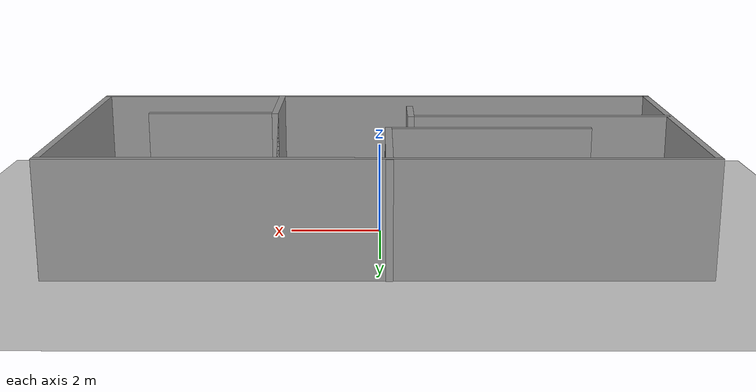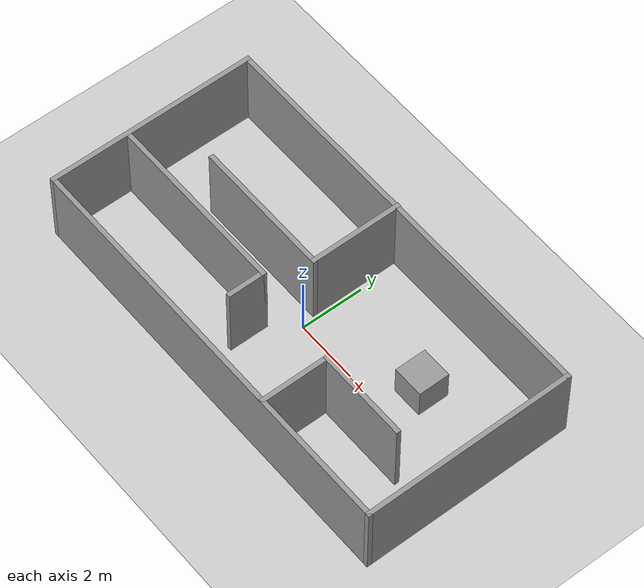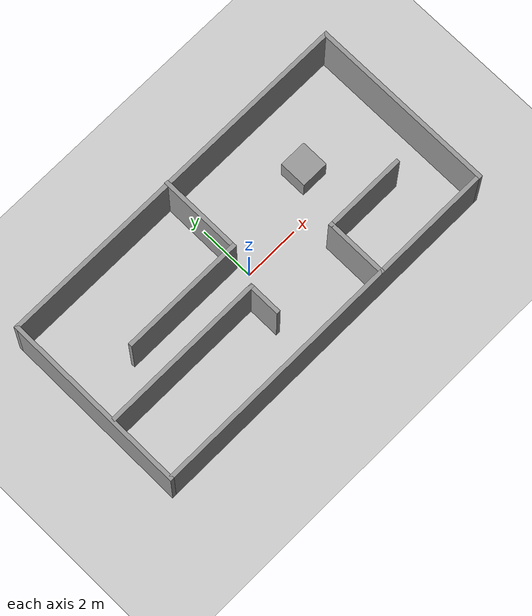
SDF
<sdf version="1.7">
 <world name="default">
  <light name="sun" type="directional">
   <pose>0 0 10 0 -0 0</pose>
   <diffuse>0.8 0.8 0.8 1</diffuse>
   <specular>0.2 0.2 0.2 1</specular>
   <attenuation>
    <range>1000</range>
    <constant>0.9</constant>
    <linear>0.01</linear>
    <quadratic>0.001</quadratic>
   </attenuation>
   <direction>-0.5 0.1 -0.9</direction>
   <spot><inner_angle>0</inner_angle><outer_angle>0</outer_angle><falloff>0</falloff></spot>
  </light>
  <model name="ground_plane">
   <static>1</static>
   <link name="link">
    <collision name="collision">
     <geometry><plane><normal>0 0 1</normal><size>100 100</size></plane></geometry>
     <surface><friction><ode><mu>100</mu><mu2>50</mu2></ode></friction></surface>
    </collision>
    <visual name="visual">
     <cast_shadows>0</cast_shadows>
     <geometry><plane><normal>0 0 1</normal><size>100 100</size></plane></geometry>
     <material>
      <script><uri>file://media/materials/scripts/gazebo.material</uri><name>Gazebo/Grey</name></script>
     </material>
    </visual>
   </link>
  </model>
  <gravity>0 0 -9.8</gravity>
  <magnetic_field>6e-06 2.3e-05 -4.2e-05</magnetic_field>
  <atmosphere type="adiabatic"/>
  <physics type="ode">
   <max_step_size>0.001</max_step_size>
   <real_time_factor>1</real_time_factor>
   <real_time_update_rate>1000</real_time_update_rate>
  </physics>
  <scene><ambient>0.4 0.4 0.4 1</ambient><background>0.7 0.7 0.7 1</background><shadows>1</shadows></scene>
  <audio><device>default</device></audio>
  <spherical_coordinates>
   <surface_model>EARTH_WGS84</surface_model>
   <latitude_deg>0</latitude_deg>
   <longitude_deg>0</longitude_deg>
   <elevation>0</elevation>
   <heading_deg>0</heading_deg>
  </spherical_coordinates>
  <model name="room">
   <pose>0.058165 0.039322 0 0 -0 0</pose>
   <link name="Wall_1">
    <collision name="Wall_1_Collision">
     <geometry><box><size>13.5 0.15 2.5</size></box></geometry>
     <pose>0 0 1.25 0 -0 0</pose>
    </collision>
    <visual name="Wall_1_Visual">
     <pose>0 0 1.25 0 -0 0</pose>
     <geometry><box><size>13.5 0.15 2.5</size></box></geometry>
     <material>
      <script><uri>file://media/materials/scripts/gazebo.material</uri><name>Gazebo/Grey</name></script>
      <ambient>1 1 1 1</ambient>
     </material>
     <meta><layer>0</layer></meta>
    </visual>
    <pose>-0 3.28812 0 0 -0 0</pose>
   </link>
   <link name="Wall_13">
    <collision name="Wall_13_Collision">
     <geometry><box><size>6 0.15 2.5</size></box></geometry>
     <pose>0 0 1.25 0 -0 0</pose>
    </collision>
    <visual name="Wall_13_Visual">
     <pose>0 0 1.25 0 -0 0</pose>
     <geometry><box><size>6 0.15 2.5</size></box></geometry>
     <material>
      <script><uri>file://media/materials/scripts/gazebo.material</uri><name>Gazebo/Grey</name></script>
      <ambient>1 1 1 1</ambient>
     </material>
     <meta><layer>0</layer></meta>
    </visual>
    <pose>-3.69355 -0.828744 0 0 -0 0</pose>
   </link>
   <link name="Wall_14">
    <collision name="Wall_14_Collision">
     <geometry><box><size>1.25 0.15 2.5</size></box></geometry>
     <pose>0 0 1.25 0 -0 0</pose>
    </collision>
    <visual name="Wall_14_Visual">
     <pose>0 0 1.25 0 -0 0</pose>
     <geometry><box><size>1.25 0.15 2.5</size></box></geometry>
     <material>
      <script><uri>file://media/materials/scripts/gazebo.material</uri><name>Gazebo/Grey</name></script>
      <ambient>1 1 1 1</ambient>
     </material>
     <meta><layer>0</layer></meta>
    </visual>
    <pose>-0.76855 -1.37874 0 0 -0 -1.5708</pose>
   </link>
   <link name="Wall_2">
    <collision name="Wall_2_Collision">
     <geometry><box><size>6.75 0.15 2.5</size></box></geometry>
     <pose>0 0 1.25 0 -0 0</pose>
    </collision>
    <visual name="Wall_2_Visual">
     <pose>0 0 1.25 0 -0 0</pose>
     <geometry><box><size>6.75 0.15 2.5</size></box></geometry>
     <material>
      <script><uri>file://media/materials/scripts/gazebo.material</uri><name>Gazebo/Grey</name></script>
      <ambient>1 1 1 1</ambient>
     </material>
     <meta><layer>0</layer></meta>
    </visual>
    <pose>6.675 -0.011884 0 0 -0 -1.5708</pose>
   </link>
   <link name="Wall_20">
    <collision name="Wall_20_Collision">
     <geometry><box><size>2.25 0.15 2.5</size></box></geometry>
     <pose>0 0 1.25 0 -0 0</pose>
    </collision>
    <visual name="Wall_20_Visual">
     <pose>0 0 1.25 0 -0 0</pose>
     <geometry><box><size>2.25 0.15 2.5</size></box></geometry>
     <material>
      <script><uri>file://media/materials/scripts/gazebo.material</uri><name>Gazebo/Grey</name></script>
      <ambient>1 1 1 1</ambient>
     </material>
     <meta><layer>0</layer></meta>
    </visual>
    <pose>2.36056 -2.24451 0 0 -0 1.5708</pose>
   </link>
   <link name="Wall_21">
    <collision name="Wall_21_Collision">
     <geometry><box><size>3 0.15 2.5</size></box></geometry>
     <pose>0 0 1.25 0 -0 0</pose>
    </collision>
    <visual name="Wall_21_Visual">
     <pose>0 0 1.25 0 -0 0</pose>
     <geometry><box><size>3 0.15 2.5</size></box></geometry>
     <material>
      <script><uri>file://media/materials/scripts/gazebo.material</uri><name>Gazebo/Grey</name></script>
      <ambient>1 1 1 1</ambient>
     </material>
     <meta><layer>0</layer></meta>
    </visual>
    <pose>3.78557 -1.19451 0 0 -0 0</pose>
   </link>
   <link name="Wall_5">
    <collision name="Wall_5_Collision">
     <geometry><box><size>6.75 0.15 2.5</size></box></geometry>
     <pose>0 0 1.25 0 -0 0</pose>
    </collision>
    <visual name="Wall_5_Visual">
     <pose>0 0 1.25 0 -0 0</pose>
     <geometry><box><size>6.75 0.15 2.5</size></box></geometry>
     <material>
      <script><uri>file://media/materials/scripts/gazebo.material</uri><name>Gazebo/Grey</name></script>
      <ambient>1 1 1 1</ambient>
     </material>
     <meta><layer>0</layer></meta>
    </visual>
    <pose>-6.675 -0.011884 0 0 -0 -1.5708</pose>
   </link>
   <link name="Wall_6">
    <collision name="Wall_6_Collision">
     <geometry><box><size>13.5 0.15 2.5</size></box></geometry>
     <pose>0 0 1.25 0 -0 0</pose>
    </collision>
    <visual name="Wall_6_Visual">
     <pose>0 0 1.25 0 -0 0</pose>
     <geometry><box><size>13.5 0.15 2.5</size></box></geometry>
     <material>
      <script><uri>file://media/materials/scripts/gazebo.material</uri><name>Gazebo/Grey</name></script>
      <ambient>1 1 1 1</ambient>
     </material>
     <meta><layer>0</layer></meta>
    </visual>
    <pose>-0 -3.31188 0 0 -0 0</pose>
   </link>
   <link name="Wall_8">
    <collision name="Wall_8_Collision">
     <geometry><box><size>3 0.15 2.5</size></box></geometry>
     <pose>0 0 1.25 0 -0 0</pose>
    </collision>
    <visual name="Wall_8_Visual">
     <pose>0 0 1.25 0 -0 0</pose>
     <geometry><box><size>3 0.15 2.5</size></box></geometry>
     <material>
      <script><uri>file://media/materials/scripts/gazebo.material</uri><name>Gazebo/Grey</name></script>
      <ambient>1 1 1 1</ambient>
     </material>
     <meta><layer>0</layer></meta>
    </visual>
    <pose>-0.244774 1.88688 0 0 -0 -1.5708</pose>
   </link>
   <link name="Wall_9">
    <collision name="Wall_9_Collision">
     <geometry><box><size>4.5 0.15 2.5</size></box></geometry>
     <pose>0 0 1.25 0 -0 0</pose>
    </collision>
    <visual name="Wall_9_Visual">
     <pose>0 0 1.25 0 -0 0</pose>
     <geometry><box><size>4.5 0.15 2.5</size></box></geometry>
     <material>
      <script><uri>file://media/materials/scripts/gazebo.material</uri><name>Gazebo/Grey</name></script>
      <ambient>1 1 1 1</ambient>
     </material>
     <meta><layer>0</layer></meta>
    </visual>
    <pose>-2.41977 0.461884 0 0 -0 3.14159</pose>
   </link>
   <static>1</static>
  </model>
  <model name="unit_box">
   <pose>3.57473 1.14444 0.499995 1e-05 -0 0</pose>
   <link name="link">
    <inertial>
     <mass>1</mass>
     <inertia>
      <ixx>0.166667</ixx>
      <ixy>0</ixy>
      <ixz>0</ixz>
      <iyy>0.166667</iyy>
      <iyz>0</iyz>
      <izz>0.166667</izz>
     </inertia>
    </inertial>
    <collision name="collision"><geometry><box><size>1 1 1</size></box></geometry></collision>
    <visual name="visual">
     <geometry><box><size>1 1 1</size></box></geometry>
     <material>
      <script><name>Gazebo/Grey</name><uri>file://media/materials/scripts/gazebo.material</uri></script>
     </material>
    </visual>
   </link>
  </model>
 </world>
</sdf>
